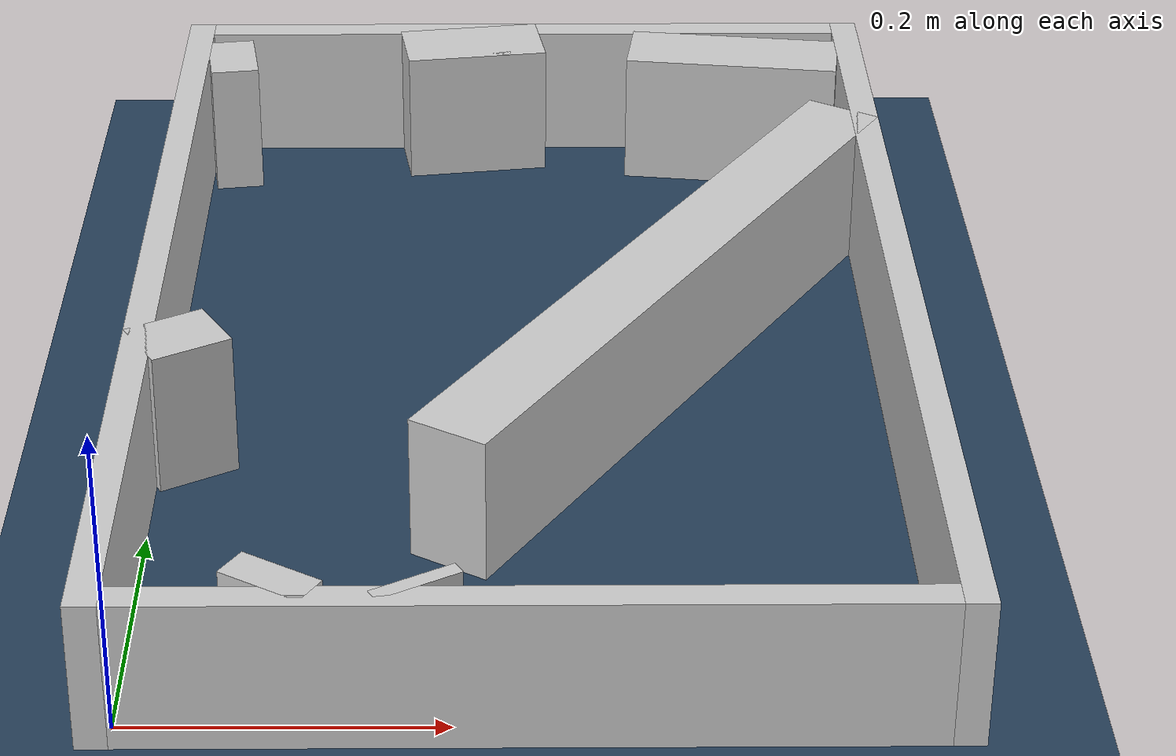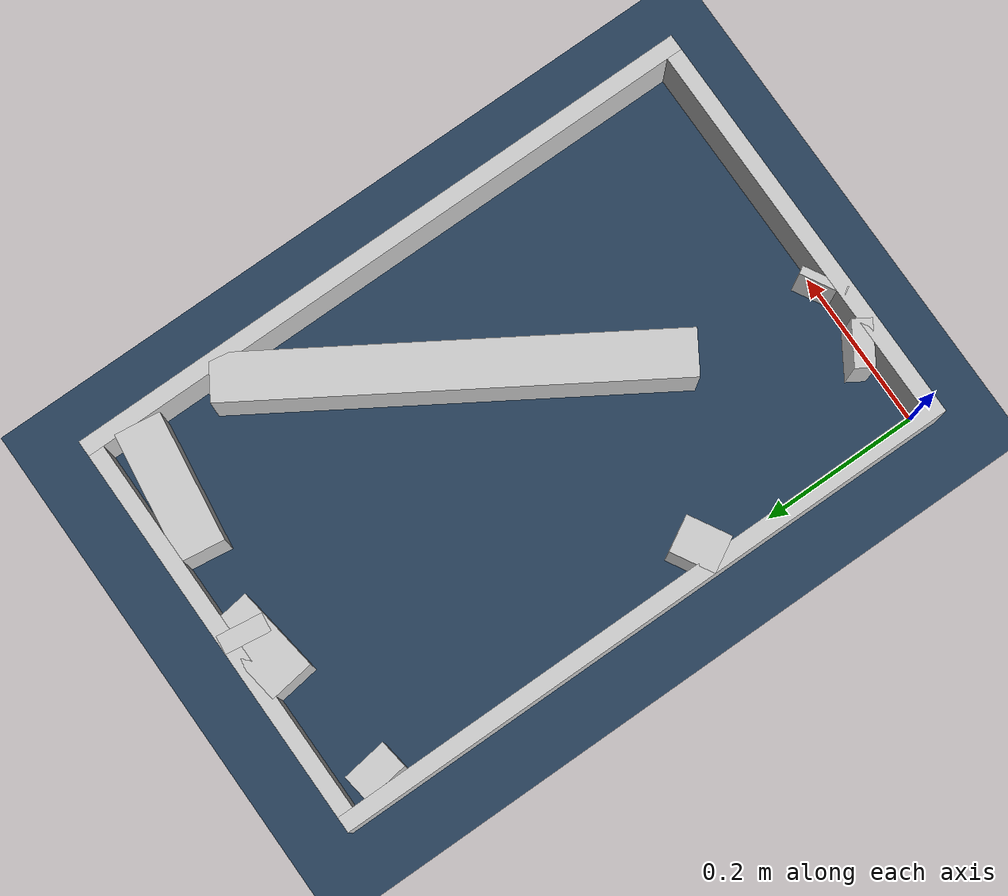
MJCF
<?xml version="1.0" ?>
<mujoco model="generated_real_template">
  <compiler angle="degree"/>
  <option timestep="0.002" integrator="implicitfast" iterations="100" cone="elliptic"/>
  <default>
    <geom density="1"/>
  </default>
  <asset>
    <texture builtin="gradient" height="3072" rgb1="0.3 0.5 0.7" rgb2="0 0 0" type="skybox" width="512"/>
    <texture builtin="checker" height="300" mark="edge" markrgb="0.8 0.8 0.8" name="groundplane" rgb1="0.2 0.3 0.4" rgb2="0.1 0.2 0.3" type="2d" width="300"/>
    <material name="groundplane" reflectance="0.2" texrepeat="5 5" texture="groundplane" texuniform="true"/>
  </asset>
  <worldbody>
    <light dir="0 0 -1" directional="true" pos="0 0 1.5"/>
    <geom name="floor" type="plane" condim="4" friction="0.5 0.005 0.001" material="groundplane" size="0 0 0.05"/>
    <body name="walls">
      <geom name="wall_boundary_left" type="box" condim="4" friction="1.0 0.005 0.0001" rgba="0.8 0.8 0.8 1" pos="-0.010000 0.387500 0.050000" euler="0 0 0.000000" size="0.010000 0.407500 0.050000"/>
      <geom name="wall_boundary_right" type="box" condim="4" friction="1.0 0.005 0.0001" rgba="0.8 0.8 0.8 1" pos="0.500000 0.387500 0.050000" euler="0 0 0.000000" size="0.010000 0.407500 0.050000"/>
      <geom name="wall_boundary_bottom" type="box" condim="4" friction="1.0 0.005 0.0001" rgba="0.8 0.8 0.8 1" pos="0.245000 -0.010000 0.050000" euler="0 0 0.000000" size="0.245000 0.010000 0.050000"/>
      <geom name="wall_boundary_top" type="box" condim="4" friction="1.0 0.005 0.0001" rgba="0.8 0.8 0.8 1" pos="0.245000 0.785000 0.050000" euler="0 0 0.000000" size="0.245000 0.010000 0.050000"/>
      <geom name="wall_inner_1_1" type="box" condim="4" friction="1.0 0.005 0.0001" rgba="0.8 0.8 0.8 1" pos="0.179197 0.004427 0.050000" euler="0 0 119.525764" size="0.005087 0.028500 0.050000"/>
      <geom name="wall_inner_1_2" type="box" condim="4" friction="1.0 0.005 0.0001" rgba="0.8 0.8 0.8 1" pos="0.016278 0.292083 0.050000" euler="0 0 119.525764" size="0.023292 0.028500 0.050000"/>
      <geom name="wall_inner_2_1" type="box" condim="4" friction="1.0 0.005 0.0001" rgba="0.8 0.8 0.8 1" pos="0.205222 0.759253 0.050000" euler="0 0 -171.960078" size="0.053813 0.028500 0.050000"/>
      <geom name="wall_inner_2_2" type="box" condim="4" friction="1.0 0.005 0.0001" rgba="0.8 0.8 0.8 1" pos="0.017890 0.732792 0.050000" euler="0 0 -171.960078" size="0.018067 0.028500 0.050000"/>
      <geom name="wall_inner_3_1" type="box" condim="4" friction="1.0 0.005 0.0001" rgba="0.8 0.8 0.8 1" pos="0.339944 0.401301 0.050000" euler="0 0 -122.003933" size="0.275270 0.028500 0.050000"/>
      <geom name="wall_inner_3_2" type="box" condim="4" friction="1.0 0.005 0.0001" rgba="0.8 0.8 0.8 1" pos="0.095630 0.010376 0.050000" euler="0 0 -122.003933" size="0.012236 0.028500 0.050000"/>
      <geom name="wall_inner_4_1" type="box" condim="4" friction="1.0 0.005 0.0001" rgba="0.8 0.8 0.8 1" pos="0.226636 0.765219 0.050000" euler="0 0 -7.639736" size="0.011532 0.028500 0.050000"/>
      <geom name="wall_inner_4_2" type="box" condim="4" friction="1.0 0.005 0.0001" rgba="0.8 0.8 0.8 1" pos="0.409525 0.740687 0.050000" euler="0 0 -7.639736" size="0.081196 0.028500 0.050000"/>
    </body>
  </worldbody>
</mujoco>
